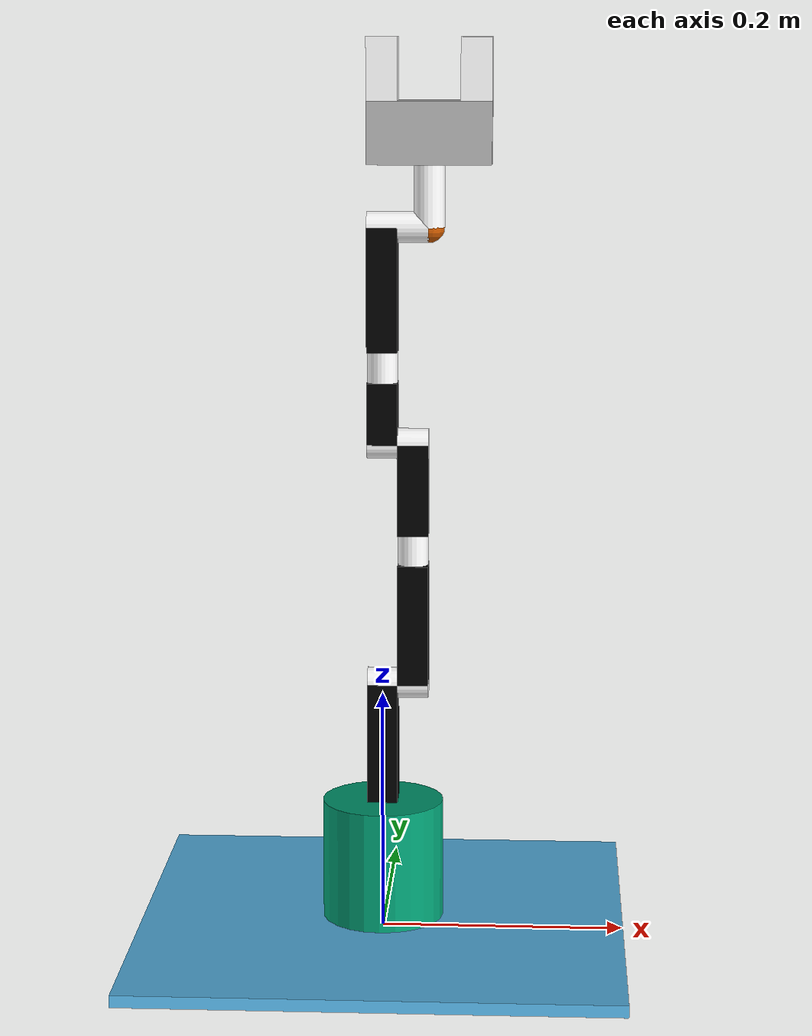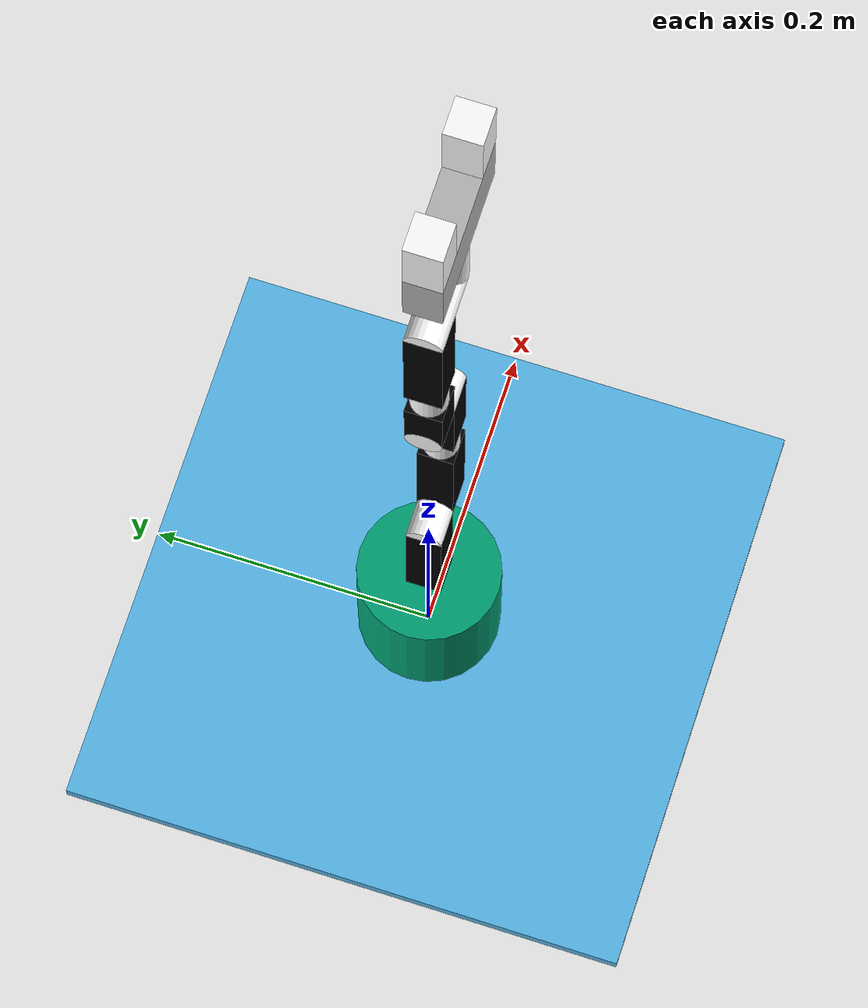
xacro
<?xml version="1.0"?>

<robot xmlns:xacro="http://www.ros.org/wiki/xacro" name="panda_based_arm">

  <material name="Black">
    <color rgba="0 0 0 1"/>
  </material>

  <material name="White">
    <color rgba="1 1 1 1"/>
  </material>

  <xacro:property name="link_1_length" value="0.1"/>
  <xacro:property name="link_2_length" value="0.1"/>
  <xacro:property name="link_3_length" value="0.05"/>
  <xacro:property name="link_4_length" value="0.1"/>
  <xacro:property name="link_5_length" value="0.025"/>
  <xacro:property name="link_6_length" value="0.075"/>
  <xacro:property name="link_7_length" value="0.05"/>
  <xacro:property name="link_8_length" value="0.05"/>
  <xacro:property name="link_9_length" value="0.025"/>
  <xacro:property name="link_10_length" value="0.1"/>
  <xacro:property name="link_11_length" value="0.05"/>
  <xacro:property name="link_12_radius" value="0.0125"/>
  <xacro:property name="link_13_length" value="0.05"/>
  <xacro:property name="hand_height" value="0.05"/>
  <xacro:property name="hand_length" value="0.1"/>
  <xacro:property name="gripper_length" value="0.05"/>
  <xacro:property name="stationary_link_color" value="Black"/>
  <xacro:property name="rotating_link_colour" value="White"/>

  <xacro:macro name="cylinder_link" params="name length xyz rpy">
    <link name="${name}">
      <visual>
        <geometry>
          <cylinder length="${length}" radius="0.0125"/>
        </geometry>
        <origin xyz="${xyz}" rpy="${rpy}"/>
        <material name="${rotating_link_colour}"/>
      </visual>
    </link>
  </xacro:macro>

  <xacro:macro name="box_link" params="name length xyz rpy">
    <link name="${name}">
      <visual>
        <geometry>
          <box size="0.025 0.025 ${length}"/>
        </geometry>
        <origin xyz="${xyz}" rpy="${rpy}"/>
        <material name="${stationary_link_color}"/>
      </visual>
    </link>
  </xacro:macro>

  <xacro:macro name="gripper_link" params="name xyz rpy">
    <link name="${name}">
      <visual>
        <geometry>
          <box size="0.025 0.025 ${gripper_length}"/>
        </geometry>
        <origin xyz="${xyz}" rpy="${rpy}"/>
        <material name="${rotating_link_colour}"/>
      </visual>
    </link>
  </xacro:macro>

  <xacro:macro name="join_links" params="name parent child xyz axis lower upper">
    <joint name="${name}" type="revolute">
      <parent link="${parent}"/>
      <child link="${child}"/>
      <origin xyz="${xyz}"/>
      <axis xyz="${axis}"/>
      <limit effort="300" velocity="0.1" lower="${lower}" upper="${upper}"/>
    </joint>
  </xacro:macro>

  <xacro:macro name="fix_links" params="name parent child xyz">
    <joint name="${name}" type="fixed">
      <parent link="${parent}"/>
      <child link="${child}"/>
      <origin xyz="${xyz}"/>
    </joint>
  </xacro:macro>

  <xacro:macro name="gripper_joint" params="name parent child xyz axis lower upper">
    <joint name="${name}" type="prismatic">
      <parent link="${parent}"/>
      <child link="${child}"/>
      <origin xyz="${xyz}"/>
      <axis xyz="${axis}"/>
      <limit effort="100" velocity="1.0" lower="${lower}" upper="${upper}"/>
    </joint>
  </xacro:macro>

  <link name="origin"/>

  <joint name="origin_joint" type="fixed">
    <parent link="origin"/>
    <child link="base_link"/>
    <origin xyz="0 0 0"/>
  </joint>

  <link name="base_link">
    <visual>
      <geometry>
        <box size="0.4 0.4 0.01"/>
      </geometry>
      <origin xyz="0 0 0.005"/>
    </visual>
  </link>

  <xacro:join_links name="base-link_1"
    parent="base_link"
    child="link_1"
    xyz="0 0 0.01"
    axis="0 0 1"
    lower="-3.14"
    upper="3.14"/>

    <link name="link_1">
      <visual>
        <geometry>
          <cylinder length="${link_1_length}" radius="0.05"/>
        </geometry>
        <origin xyz="0 0 ${link_1_length/2}"/>
      </visual>
    </link>

    <xacro:fix_links name="link_1-link_2"
      parent="link_1"
      child="link_2"
      xyz="0 0 ${link_1_length}"/>

    <xacro:box_link name="link_2"
      length="${link_2_length}"
      xyz="0 0 ${link_2_length/2}"
      rpy="0 0 0"/>

    <xacro:join_links name="link_2-link_3"
      parent="link_2"
      child="link_3"
      xyz="0.0125 0 ${link_2_length}"
      axis="1 0 0"
      lower="0"
      upper="1.57"/>

    <xacro:cylinder_link name="link_3"
      length="${link_3_length}"
      xyz="0 0 0"
      rpy="0 1.57 0"/>

    <xacro:fix_links name="link_3-link_4"
      parent="link_3"
      child="link_4"
      xyz="0 0 0"/>

    <xacro:box_link name="link_4"
      length="${link_4_length}"
      xyz="0.0125 0 ${link_4_length/2}"
      rpy="0 0 0"/>

    <xacro:join_links name="link_4-link_5"
      parent="link_4"
      child="link_5"
      xyz="0.0125 0 ${link_4_length}"
      axis="0 0 1"
      lower="-1.57"
      upper="1.57"/>

    <xacro:cylinder_link name="link_5"
      length="${link_5_length}"
      xyz="0 0 ${link_5_length/2}"
      rpy="0 0 0"/>

    <xacro:fix_links name="link_5-link_6"
      parent="link_5"
      child="link_6"
      xyz="0 0 ${link_5_length}"/>

    <xacro:box_link name="link_6"
      length="${link_6_length}"
      xyz="0 0 ${link_6_length/2}"
      rpy="0 0 0"/>

    <xacro:join_links name="link_6-link_7"
      parent="link_6"
      child="link_7"
      xyz="-0.0125 0 ${link_6_length}"
      axis="1 0 0"
      lower="-1.57"
      upper="1.57"/>

    <xacro:cylinder_link name="link_7"
      length="${link_7_length}"
      xyz="0 0 0"
      rpy="0 1.57 0"/>

    <xacro:fix_links name="link_7-link_8"
      parent="link_7"
      child="link_8"
      xyz="0 0 0"/>

    <xacro:box_link name="link_8"
      length="${link_8_length}"
      xyz="-0.0125 0 ${link_8_length/2}"
      rpy="0 0 0"/>

    <xacro:join_links name="link_8-link_9"
      parent="link_8"
      child="link_9"
      xyz="-0.0125 0 ${link_8_length}"
      axis="0 0 1"
      lower="-1.57"
      upper="1.57"/>

    <xacro:cylinder_link name="link_9"
      length="${link_9_length}"
      xyz="0 0 ${link_9_length/2}"
      rpy="0 0 0"/>

    <xacro:fix_links name="link_9-link_10"
      parent="link_9"
      child="link_10"
      xyz="0 0 ${link_9_length}"/>

    <xacro:box_link name="link_10"
      length="${link_10_length}"
      xyz="0 0 ${link_10_length/2}"
      rpy="0 0 0"/>

    <xacro:join_links name="link_10-link_11"
      parent="link_10"
      child="link_11"
      xyz="0.0125 0 ${link_10_length}"
      axis="1 0 0"
      lower="-1.57"
      upper="1.57"/>

    <xacro:cylinder_link name="link_11"
      length="${link_11_length}"
      xyz="0 0 0"
      rpy="0 1.57 0"/>

    <xacro:fix_links name="link_11-link_12"
      parent="link_11"
      child="link_12"
      xyz="0.025 0 0"/>

    <link name="link_12">
      <visual>
        <geometry>
          <sphere radius="${link_12_radius}"/>
        </geometry>
        <origin xyz="0 0 0"/>
      </visual>
    </link>

    <xacro:join_links name="link_12-link_13"
      parent="link_12"
      child="link_13"
      xyz="0 0 0"
      axis="0 0 1"
      lower="-3.14"
      upper="3.14"/>

    <xacro:cylinder_link name="link_13"
      length="${link_13_length}"
      xyz="0 0 ${link_13_length/2}"
      rpy="0 0 0"/>

    <xacro:fix_links name="link_13-hand"
      parent="link_13"
      child="hand"
      xyz="0 0 ${link_13_length}"/>

    <link name="hand">
      <visual>
        <geometry>
          <box size="${hand_length} 0.025 ${hand_height}"/>
        </geometry>
        <origin xyz="0 0 ${hand_height/2}"/>
      </visual>
    </link>

    <xacro:gripper_joint name="hand-gripper_link_1"
      parent="hand"
      child="gripper_link_1"
      xyz="${hand_length/2-0.0125} 0 ${hand_height}"
      axis="1 0 0"
      lower="0"
      upper="${0.025-hand_length/2}"/>

    <xacro:gripper_link name="gripper_link_1"
      xyz="0 0 ${gripper_length/2}"
      rpy="0 0 0"/>

    <xacro:gripper_joint name="hand-gripper_link_2"
      parent="hand"
      child="gripper_link_2"
      xyz="${0.0125-hand_length/2} 0 ${hand_height}"
      axis="1 0 0"
      lower="0"
      upper="${hand_length/2-0.025}"/>

    <xacro:gripper_link name="gripper_link_2"
      xyz="0 0 ${gripper_length/2}"
      rpy="0 0 0"/>

</robot>
